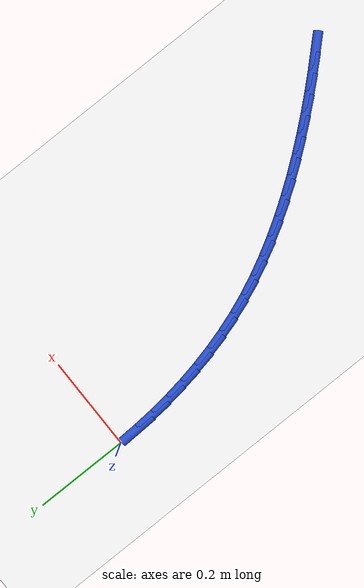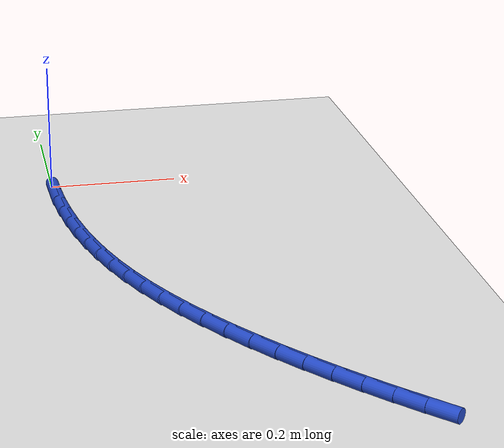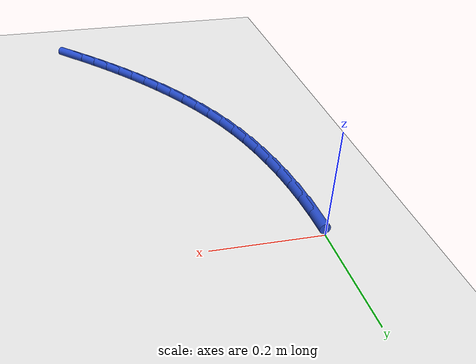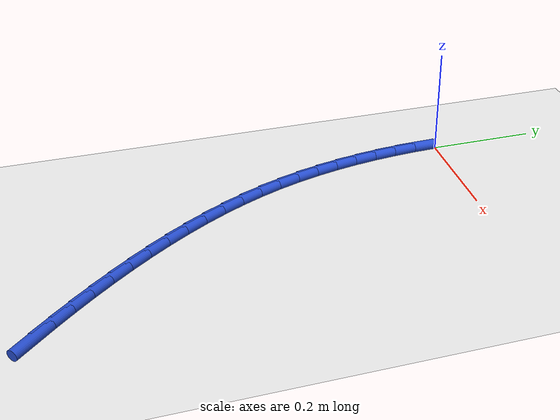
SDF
<sdf version="1.6">
 <world name="default">
  <model name="ground_plane">
   <static>1</static>
   <link name="link">
    <collision name="collision">
     <geometry><plane><normal>0 0 1</normal><size>100 100</size></plane></geometry>
     <surface><friction><ode><mu>100</mu><mu2>50</mu2></ode></friction></surface>
    </collision>
    <visual name="visual">
     <cast_shadows>0</cast_shadows>
     <geometry><plane><normal>0 0 1</normal><size>100 100</size></plane></geometry>
     <material>
      <script><uri>file://media/materials/scripts/gazebo.material</uri><name>Gazebo/WhiteGlow</name></script>
     </material>
    </visual>
   </link>
  </model>
  <model name="line">
   <link name="link_149">
    <pose>0.3669324503403249 -0.7916735108791585 0.01 0 1.57 -0.80987212543816</pose>
    <collision name="collision">
     <geometry><cylinder><radius>0.01</radius><length>0.08</length></cylinder></geometry>
    </collision>
    <visual name="visual">
     <material>
      <script><name>Gazebo/Blue</name><uri>file://media/materials/scripts/gazebo.material</uri></script>
     </material>
     <geometry><cylinder><radius>0.01</radius><length>0.08</length></cylinder></geometry>
    </visual>
   </link>
   <link name="link_150">
    <pose>0.337720689638688 -0.7609957229208235 0.01 0 1.57 -0.8306089382110864</pose>
    <collision name="collision">
     <geometry><cylinder><radius>0.01</radius><length>0.08</length></cylinder></geometry>
    </collision>
    <visual name="visual">
     <material>
      <script><name>Gazebo/Blue</name><uri>file://media/materials/scripts/gazebo.material</uri></script>
     </material>
     <geometry><cylinder><radius>0.01</radius><length>0.08</length></cylinder></geometry>
    </visual>
   </link>
   <link name="link_151">
    <pose>0.30909999990950204 -0.7296626278090863 0.01 0 1.57 -0.8524179366584036</pose>
    <collision name="collision">
     <geometry><cylinder><radius>0.01</radius><length>0.08</length></cylinder></geometry>
    </collision>
    <visual name="visual">
     <material>
      <script><name>Gazebo/Blue</name><uri>file://media/materials/scripts/gazebo.material</uri></script>
     </material>
     <geometry><cylinder><radius>0.01</radius><length>0.08</length></cylinder></geometry>
    </visual>
   </link>
   <link name="link_152">
    <pose>0.28109607100112727 -0.6976289574040171 0.01 0 1.57 -0.8752493680905454</pose>
    <collision name="collision">
     <geometry><cylinder><radius>0.01</radius><length>0.08</length></cylinder></geometry>
    </collision>
    <visual name="visual">
     <material>
      <script><name>Gazebo/Blue</name><uri>file://media/materials/scripts/gazebo.material</uri></script>
     </material>
     <geometry><cylinder><radius>0.01</radius><length>0.08</length></cylinder></geometry>
    </visual>
   </link>
   <link name="link_153">
    <pose>0.253735011110097 -0.6648496216475891 0.01 0 1.57 -0.8995584744749647</pose>
    <collision name="collision">
     <geometry><cylinder><radius>0.01</radius><length>0.08</length></cylinder></geometry>
    </collision>
    <visual name="visual">
     <material>
      <script><name>Gazebo/Blue</name><uri>file://media/materials/scripts/gazebo.material</uri></script>
     </material>
     <geometry><cylinder><radius>0.01</radius><length>0.08</length></cylinder></geometry>
    </visual>
   </link>
   <link name="link_154">
    <pose>0.22708573575507046 -0.6312977526465836 0.01 0 1.57 -0.9263413618342407</pose>
    <collision name="collision">
     <geometry><cylinder><radius>0.01</radius><length>0.08</length></cylinder></geometry>
    </collision>
    <visual name="visual">
     <material>
      <script><name>Gazebo/Blue</name><uri>file://media/materials/scripts/gazebo.material</uri></script>
     </material>
     <geometry><cylinder><radius>0.01</radius><length>0.08</length></cylinder></geometry>
    </visual>
   </link>
   <link name="link_155">
    <pose>0.20129639645441644 -0.5969802115843416 0.01 0 1.57 -0.9558390260265349</pose>
    <collision name="collision">
     <geometry><cylinder><radius>0.01</radius><length>0.08</length></cylinder></geometry>
    </collision>
    <visual name="visual">
     <material>
      <script><name>Gazebo/Blue</name><uri>file://media/materials/scripts/gazebo.material</uri></script>
     </material>
     <geometry><cylinder><radius>0.01</radius><length>0.08</length></cylinder></geometry>
    </visual>
   </link>
   <link name="link_156">
    <pose>0.1765237264871863 -0.5619075127168505 0.01 0 1.57 -0.9882051138673633</pose>
    <collision name="collision">
     <geometry><cylinder><radius>0.01</radius><length>0.08</length></cylinder></geometry>
    </collision>
    <visual name="visual">
     <material>
      <script><name>Gazebo/Blue</name><uri>file://media/materials/scripts/gazebo.material</uri></script>
     </material>
     <geometry><cylinder><radius>0.01</radius><length>0.08</length></cylinder></geometry>
    </visual>
   </link>
   <link name="link_157">
    <pose>0.15292445913243152 -0.5260901703000972 0.01 0 1.57 -1.0236001632455887</pose>
    <collision name="collision">
     <geometry><cylinder><radius>0.01</radius><length>0.08</length></cylinder></geometry>
    </collision>
    <visual name="visual">
     <material>
      <script><name>Gazebo/Blue</name><uri>file://media/materials/scripts/gazebo.material</uri></script>
     </material>
     <geometry><cylinder><radius>0.01</radius><length>0.08</length></cylinder></geometry>
    </visual>
   </link>
   <link name="link_158">
    <pose>0.1306553276692031 -0.4895386985900682 0.01 0 1.57 -1.0621845180713485</pose>
    <collision name="collision">
     <geometry><cylinder><radius>0.01</radius><length>0.08</length></cylinder></geometry>
    </collision>
    <visual name="visual">
     <material>
      <script><name>Gazebo/Blue</name><uri>file://media/materials/scripts/gazebo.material</uri></script>
     </material>
     <geometry><cylinder><radius>0.01</radius><length>0.08</length></cylinder></geometry>
    </visual>
   </link>
   <link name="link_159">
    <pose>0.10987306537655343 -0.4522636118427526 0.01 0 1.57 -1.1041089116566192</pose>
    <collision name="collision">
     <geometry><cylinder><radius>0.01</radius><length>0.08</length></cylinder></geometry>
    </collision>
    <visual name="visual">
     <material>
      <script><name>Gazebo/Blue</name><uri>file://media/materials/scripts/gazebo.material</uri></script>
     </material>
     <geometry><cylinder><radius>0.01</radius><length>0.08</length></cylinder></geometry>
    </visual>
   </link>
   <link name="link_160">
    <pose>0.09073440553353354 -0.4142754243141366 0.01 0 1.57 -1.1495022939804231</pose>
    <collision name="collision">
     <geometry><cylinder><radius>0.01</radius><length>0.08</length></cylinder></geometry>
    </collision>
    <visual name="visual">
     <material>
      <script><name>Gazebo/Blue</name><uri>file://media/materials/scripts/gazebo.material</uri></script>
     </material>
     <geometry><cylinder><radius>0.01</radius><length>0.08</length></cylinder></geometry>
    </visual>
   </link>
   <link name="link_161">
    <pose>0.07339608141919483 -0.37558465026020754 0.01 0 1.57 -1.1982370086960004</pose>
    <collision name="collision">
     <geometry><cylinder><radius>0.01</radius><length>0.08</length></cylinder></geometry>
    </collision>
    <visual name="visual">
     <material>
      <script><name>Gazebo/Blue</name><uri>file://media/materials/scripts/gazebo.material</uri></script>
     </material>
     <geometry><cylinder><radius>0.01</radius><length>0.08</length></cylinder></geometry>
    </visual>
   </link>
   <link name="link_162">
    <pose>0.05800524292549026 -0.3362027983237522 0.01 0 1.57 -1.2474155730510552</pose>
    <collision name="collision">
     <geometry><cylinder><radius>0.01</radius><length>0.08</length></cylinder></geometry>
    </collision>
    <visual name="visual">
     <material>
      <script><name>Gazebo/Blue</name><uri>file://media/materials/scripts/gazebo.material</uri></script>
     </material>
     <geometry><cylinder><radius>0.01</radius><length>0.08</length></cylinder></geometry>
    </visual>
   </link>
   <link name="link_163">
    <pose>0.04458320763730181 -0.29615443369884165 0.01 0 1.57 -1.2948312948122682</pose>
    <collision name="collision">
     <geometry><cylinder><radius>0.01</radius><length>0.08</length></cylinder></geometry>
    </collision>
    <visual name="visual">
     <material>
      <script><name>Gazebo/Blue</name><uri>file://media/materials/scripts/gazebo.material</uri></script>
     </material>
     <geometry><cylinder><radius>0.01</radius><length>0.08</length></cylinder></geometry>
    </visual>
   </link>
   <link name="link_164">
    <pose>0.033062690917358584 -0.25547331508068044 0.01 0 1.57 -1.3402747917972044</pose>
    <collision name="collision">
     <geometry><cylinder><radius>0.01</radius><length>0.08</length></cylinder></geometry>
    </collision>
    <visual name="visual">
     <material>
      <script><name>Gazebo/Blue</name><uri>file://media/materials/scripts/gazebo.material</uri></script>
     </material>
     <geometry><cylinder><radius>0.01</radius><length>0.08</length></cylinder></geometry>
    </visual>
   </link>
   <link name="link_165">
    <pose>0.02337455918475237 -0.2141933930136707 0.01 0 1.57 -1.3836255364177685</pose>
    <collision name="collision">
     <geometry><cylinder><radius>0.01</radius><length>0.08</length></cylinder></geometry>
    </collision>
    <visual name="visual">
     <material>
      <script><name>Gazebo/Blue</name><uri>file://media/materials/scripts/gazebo.material</uri></script>
     </material>
     <geometry><cylinder><radius>0.01</radius><length>0.08</length></cylinder></geometry>
    </visual>
   </link>
   <link name="link_166">
    <pose>0.015449678858575303 -0.1723486180422157 0.01 0 1.57 -1.4248061229209872</pose>
    <collision name="collision">
     <geometry><cylinder><radius>0.01</radius><length>0.08</length></cylinder></geometry>
    </collision>
    <visual name="visual">
     <material>
      <script><name>Gazebo/Blue</name><uri>file://media/materials/scripts/gazebo.material</uri></script>
     </material>
     <geometry><cylinder><radius>0.01</radius><length>0.08</length></cylinder></geometry>
    </visual>
   </link>
   <link name="link_167">
    <pose>0.00921891635791944 -0.1299729407107182 0.01 0 1.57 -1.4637774312103922</pose>
    <collision name="collision">
     <geometry><cylinder><radius>0.01</radius><length>0.08</length></cylinder></geometry>
    </collision>
    <visual name="visual">
     <material>
      <script><name>Gazebo/Blue</name><uri>file://media/materials/scripts/gazebo.material</uri></script>
     </material>
     <geometry><cylinder><radius>0.01</radius><length>0.08</length></cylinder></geometry>
    </visual>
   </link>
   <link name="link_168">
    <pose>0.004613138101876812 -0.08710031156358045 0.01 0 1.57 -1.5005329705718677</pose>
    <collision name="collision">
     <geometry><cylinder><radius>0.01</radius><length>0.08</length></cylinder></geometry>
    </collision>
    <visual name="visual">
     <material>
      <script><name>Gazebo/Blue</name><uri>file://media/materials/scripts/gazebo.material</uri></script>
     </material>
     <geometry><cylinder><radius>0.01</radius><length>0.08</length></cylinder></geometry>
    </visual>
   </link>
   <link name="link_169">
    <pose>0.0015632105095396772 -0.043764681145207075 0.01 0 1.57 -1.5350929653534124</pose>
    <collision name="collision">
     <geometry><cylinder><radius>0.01</radius><length>0.08</length></cylinder></geometry>
    </collision>
    <visual name="visual">
     <material>
      <script><name>Gazebo/Blue</name><uri>file://media/materials/scripts/gazebo.material</uri></script>
     </material>
     <geometry><cylinder><radius>0.01</radius><length>0.08</length></cylinder></geometry>
    </visual>
   </link>
  </model>
 </world>
</sdf>
